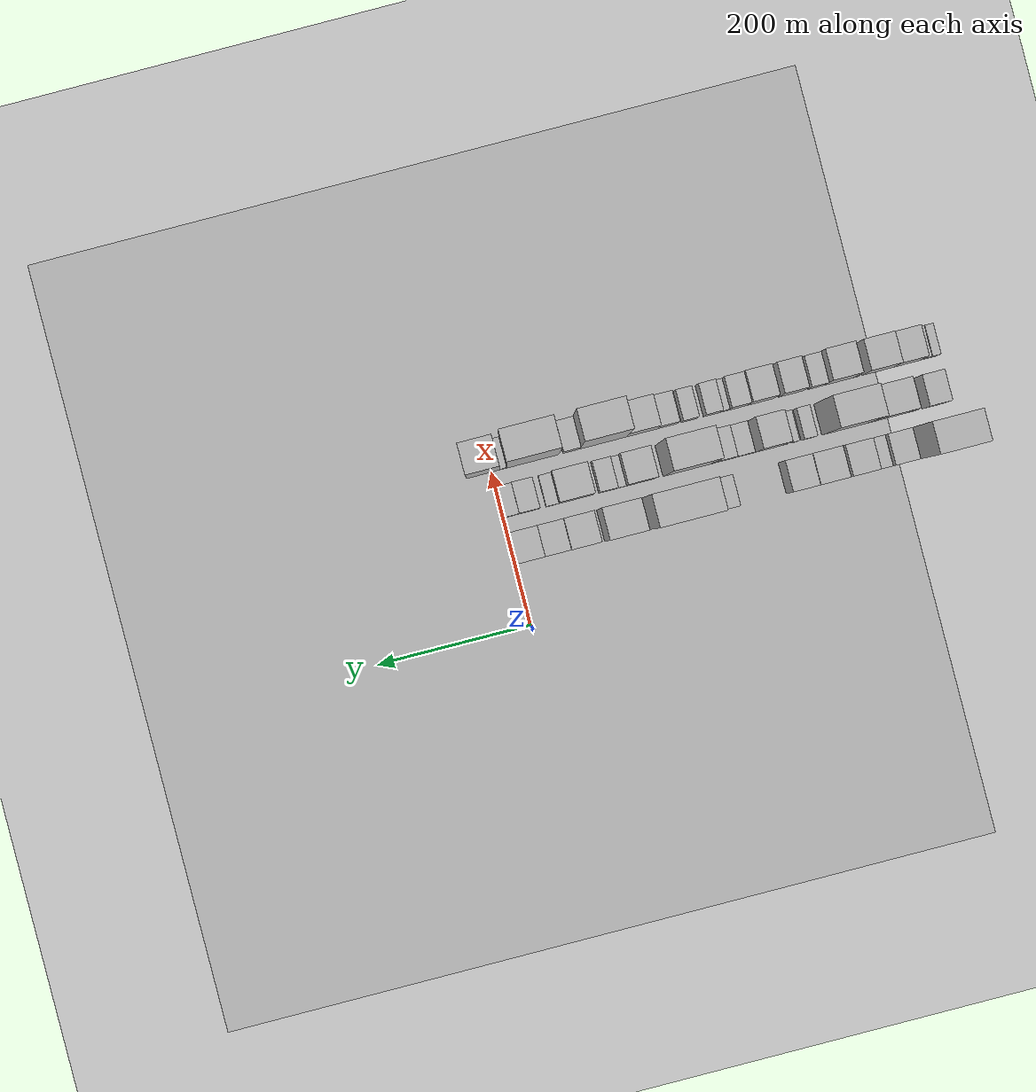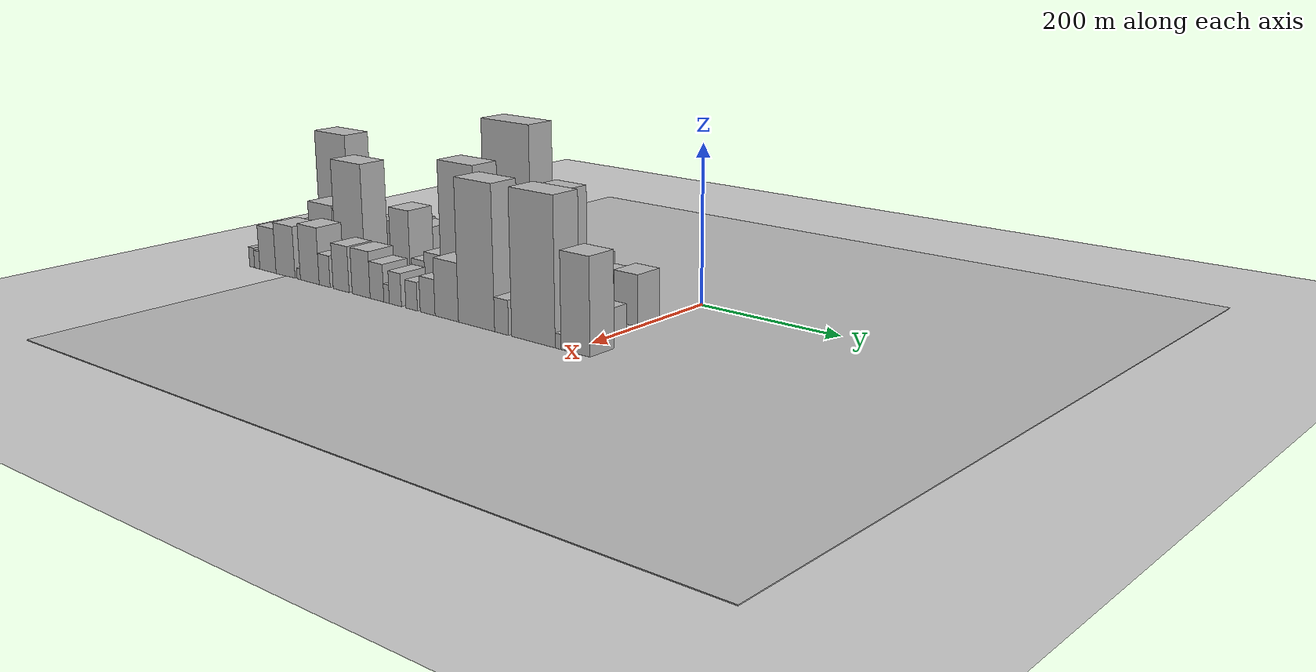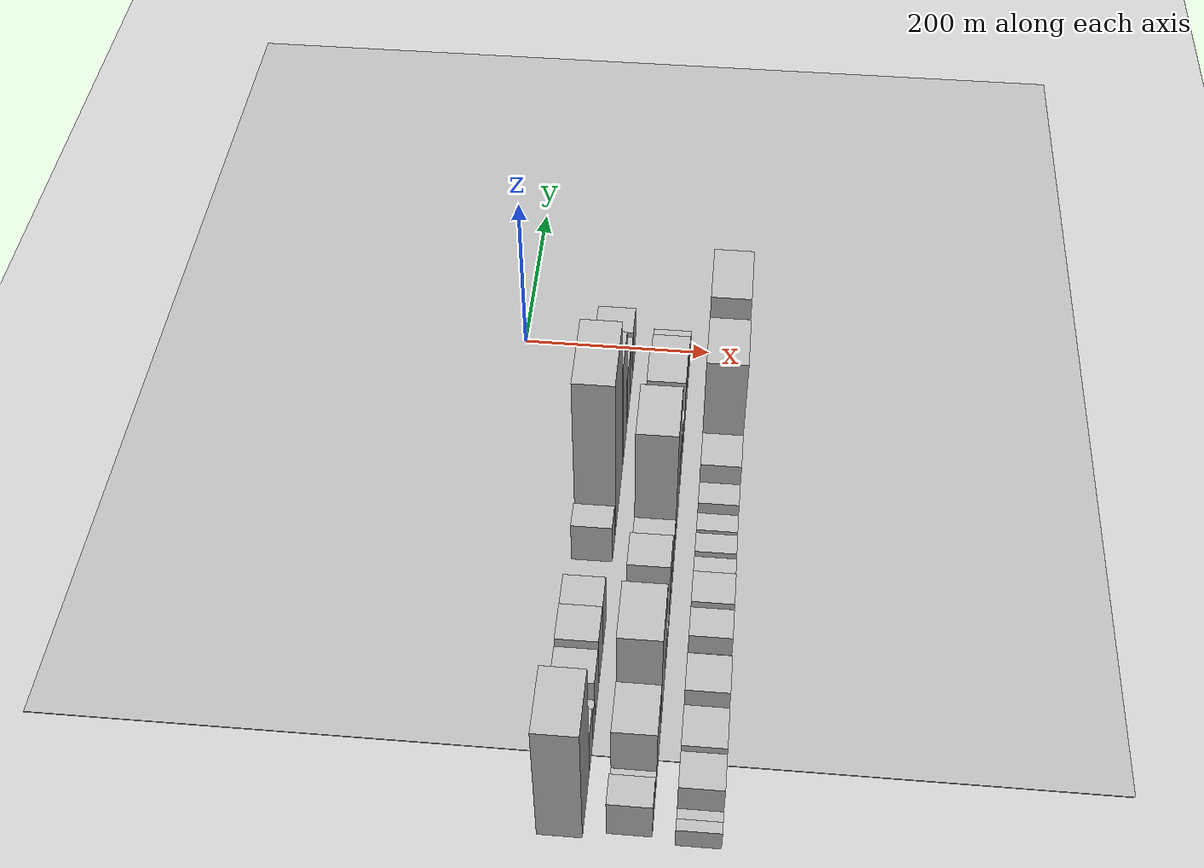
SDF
<sdf version="1.6">
 <world name="default">
  <include><name>ground_plane_1</name><uri>model://HANNAS_ground_plane</uri></include>
  <include>
   <name>ground_plane_2</name>
   <uri>model://HANNAS_ground_plane</uri>
   <pose>100 0 0  0 0 0</pose>
  </include>
  <model name="building_1">
   <static>1</static>
   <pose>100.0000 -548.3771 0 0.000000 0.000000 0.000000</pose>
   <link name="link">
    <pose>0 0 84.00 0 0 0</pose>
    <collision name="collision"><geometry><box><size>40.0000 63.2457 168.0000</size></box></geometry></collision>
    <visual name="visual">
     <cast_shadows>0</cast_shadows>
     <geometry><box><size>40.0000 63.2457 168.0000</size></box></geometry>
     <material>
      <script>
       <uri>model://HANNAS_wall/materials/scripts</uri>
       <uri>model://HANNAS_wall/materials/textures</uri>
       <name>vrc/HANNAS_wall</name>
      </script>
     </material>
    </visual>
   </link>
  </model>
  <model name="building_2">
   <static>1</static>
   <pose>100.0000 -500.9420 0 0.000000 0.000000 0.000000</pose>
   <link name="link">
    <pose>0 0 27.00 0 0 0</pose>
    <collision name="collision"><geometry><box><size>40.0000 31.6246 54.0000</size></box></geometry></collision>
    <visual name="visual">
     <cast_shadows>0</cast_shadows>
     <geometry><box><size>40.0000 31.6246 54.0000</size></box></geometry>
     <material>
      <script>
       <uri>model://HANNAS_wall/materials/scripts</uri>
       <uri>model://HANNAS_wall/materials/textures</uri>
       <name>vrc/HANNAS_wall</name>
      </script>
     </material>
    </visual>
   </link>
  </model>
  <model name="building_3">
   <static>1</static>
   <pose>100.0000 -475.0238 0 0.000000 0.000000 0.000000</pose>
   <link name="link">
    <pose>0 0 18.00 0 0 0</pose>
    <collision name="collision"><geometry><box><size>40.0000 20.2117 36.0000</size></box></geometry></collision>
    <visual name="visual">
     <cast_shadows>0</cast_shadows>
     <geometry><box><size>40.0000 20.2117 36.0000</size></box></geometry>
     <material>
      <script>
       <uri>model://HANNAS_wall/materials/scripts</uri>
       <uri>model://HANNAS_wall/materials/textures</uri>
       <name>vrc/HANNAS_wall</name>
      </script>
     </material>
    </visual>
   </link>
  </model>
  <model name="building_4">
   <static>1</static>
   <pose>100.0000 -447.1231 0 0.000000 0.000000 0.000000</pose>
   <link name="link">
    <pose>0 0 31.50 0 0 0</pose>
    <collision name="collision"><geometry><box><size>40.0000 35.5897 63.0000</size></box></geometry></collision>
    <visual name="visual">
     <cast_shadows>0</cast_shadows>
     <geometry><box><size>40.0000 35.5897 63.0000</size></box></geometry>
     <material>
      <script>
       <uri>model://HANNAS_wall/materials/scripts</uri>
       <uri>model://HANNAS_wall/materials/textures</uri>
       <name>vrc/HANNAS_wall</name>
      </script>
     </material>
    </visual>
   </link>
  </model>
  <model name="building_5">
   <static>1</static>
   <pose>100.0000 -406.2347 0 0.000000 0.000000 0.000000</pose>
   <link name="link">
    <pose>0 0 34.50 0 0 0</pose>
    <collision name="collision"><geometry><box><size>40.0000 38.1872 69.0000</size></box></geometry></collision>
    <visual name="visual">
     <cast_shadows>0</cast_shadows>
     <geometry><box><size>40.0000 38.1872 69.0000</size></box></geometry>
     <material>
      <script>
       <uri>model://HANNAS_wall/materials/scripts</uri>
       <uri>model://HANNAS_wall/materials/textures</uri>
       <name>vrc/HANNAS_wall</name>
      </script>
     </material>
    </visual>
   </link>
  </model>
  <model name="building_6">
   <static>1</static>
   <pose>100.0000 -369.8008 0 0.000000 0.000000 0.000000</pose>
   <link name="link">
    <pose>0 0 33.00 0 0 0</pose>
    <collision name="collision"><geometry><box><size>40.0000 34.6807 66.0000</size></box></geometry></collision>
    <visual name="visual">
     <cast_shadows>0</cast_shadows>
     <geometry><box><size>40.0000 34.6807 66.0000</size></box></geometry>
     <material>
      <script>
       <uri>model://HANNAS_wall/materials/scripts</uri>
       <uri>model://HANNAS_wall/materials/textures</uri>
       <name>vrc/HANNAS_wall</name>
      </script>
     </material>
    </visual>
   </link>
  </model>
  <model name="building_7">
   <static>1</static>
   <pose>100.0000 -273.6054 0 0.000000 0.000000 0.000000</pose>
   <link name="link">
    <pose>0 0 27.00 0 0 0</pose>
    <collision name="collision"><geometry><box><size>40.0000 27.2367 54.0000</size></box></geometry></collision>
    <visual name="visual">
     <cast_shadows>0</cast_shadows>
     <geometry><box><size>40.0000 27.2367 54.0000</size></box></geometry>
     <material>
      <script>
       <uri>model://HANNAS_wall/materials/scripts</uri>
       <uri>model://HANNAS_wall/materials/textures</uri>
       <name>vrc/HANNAS_wall</name>
      </script>
     </material>
    </visual>
   </link>
  </model>
  <model name="building_8">
   <static>1</static>
   <pose>100.0000 -256.3107 0 0.000000 0.000000 0.000000</pose>
   <link name="link">
    <pose>0 0 9.00 0 0 0</pose>
    <collision name="collision"><geometry><box><size>40.0000 7.3528 18.0000</size></box></geometry></collision>
    <visual name="visual">
     <cast_shadows>0</cast_shadows>
     <geometry><box><size>40.0000 7.3528 18.0000</size></box></geometry>
     <material>
      <script>
       <uri>model://HANNAS_wall/materials/scripts</uri>
       <uri>model://HANNAS_wall/materials/textures</uri>
       <name>vrc/HANNAS_wall</name>
      </script>
     </material>
    </visual>
   </link>
  </model>
  <model name="building_9">
   <static>1</static>
   <pose>100.0000 -212.1826 0 0.000000 0.000000 0.000000</pose>
   <link name="link">
    <pose>0 0 109.50 0 0 0</pose>
    <collision name="collision"><geometry><box><size>40.0000 80.9033 219.0000</size></box></geometry></collision>
    <visual name="visual">
     <cast_shadows>0</cast_shadows>
     <geometry><box><size>40.0000 80.9033 219.0000</size></box></geometry>
     <material>
      <script>
       <uri>model://HANNAS_wall/materials/scripts</uri>
       <uri>model://HANNAS_wall/materials/textures</uri>
       <name>vrc/HANNAS_wall</name>
      </script>
     </material>
    </visual>
   </link>
  </model>
  <model name="building_10">
   <static>1</static>
   <pose>100.0000 -140.3099 0 0.000000 0.000000 0.000000</pose>
   <link name="link">
    <pose>0 0 73.50 0 0 0</pose>
    <collision name="collision"><geometry><box><size>40.0000 48.8421 147.0000</size></box></geometry></collision>
    <visual name="visual">
     <cast_shadows>0</cast_shadows>
     <geometry><box><size>40.0000 48.8421 147.0000</size></box></geometry>
     <material>
      <script>
       <uri>model://HANNAS_wall/materials/scripts</uri>
       <uri>model://HANNAS_wall/materials/textures</uri>
       <name>vrc/HANNAS_wall</name>
      </script>
     </material>
    </visual>
   </link>
  </model>
  <model name="building_11">
   <static>1</static>
   <pose>100.0000 -90.5646 0 0.000000 0.000000 0.000000</pose>
   <link name="link">
    <pose>0 0 36.00 0 0 0</pose>
    <collision name="collision"><geometry><box><size>40.0000 38.6485 72.0000</size></box></geometry></collision>
    <visual name="visual">
     <cast_shadows>0</cast_shadows>
     <geometry><box><size>40.0000 38.6485 72.0000</size></box></geometry>
     <material>
      <script>
       <uri>model://HANNAS_wall/materials/scripts</uri>
       <uri>model://HANNAS_wall/materials/textures</uri>
       <name>vrc/HANNAS_wall</name>
      </script>
     </material>
    </visual>
   </link>
  </model>
  <model name="building_12">
   <static>1</static>
   <pose>100.0000 -54.4767 0 0.000000 0.000000 0.000000</pose>
   <link name="link">
    <pose>0 0 28.50 0 0 0</pose>
    <collision name="collision"><geometry><box><size>40.0000 33.5274 57.0000</size></box></geometry></collision>
    <visual name="visual">
     <cast_shadows>0</cast_shadows>
     <geometry><box><size>40.0000 33.5274 57.0000</size></box></geometry>
     <material>
      <script>
       <uri>model://HANNAS_wall/materials/scripts</uri>
       <uri>model://HANNAS_wall/materials/textures</uri>
       <name>vrc/HANNAS_wall</name>
      </script>
     </material>
    </visual>
   </link>
  </model>
  <model name="building_13">
   <static>1</static>
   <pose>100.0000 -19.4294 0 0.000000 0.000000 0.000000</pose>
   <link name="link">
    <pose>0 0 31.50 0 0 0</pose>
    <collision name="collision"><geometry><box><size>40.0000 36.5672 63.0000</size></box></geometry></collision>
    <visual name="visual">
     <cast_shadows>0</cast_shadows>
     <geometry><box><size>40.0000 36.5672 63.0000</size></box></geometry>
     <material>
      <script>
       <uri>model://HANNAS_wall/materials/scripts</uri>
       <uri>model://HANNAS_wall/materials/textures</uri>
       <name>vrc/HANNAS_wall</name>
      </script>
     </material>
    </visual>
   </link>
  </model>
  <model name="building_30">
   <static>1</static>
   <pose>160.0000 -559.5508 0 0.000000 0.000000 0.000000</pose>
   <link name="link">
    <pose>0 0 25.50 0 0 0</pose>
    <collision name="collision"><geometry><box><size>40.0000 28.8984 51.0000</size></box></geometry></collision>
    <visual name="visual">
     <cast_shadows>0</cast_shadows>
     <geometry><box><size>40.0000 28.8984 51.0000</size></box></geometry>
     <material>
      <script>
       <uri>model://HANNAS_wall/materials/scripts</uri>
       <uri>model://HANNAS_wall/materials/textures</uri>
       <name>vrc/HANNAS_wall</name>
      </script>
     </material>
    </visual>
   </link>
  </model>
  <model name="building_31">
   <static>1</static>
   <pose>160.0000 -531.5148 0 0.000000 0.000000 0.000000</pose>
   <link name="link">
    <pose>0 0 13.50 0 0 0</pose>
    <collision name="collision"><geometry><box><size>40.0000 11.1736 27.0000</size></box></geometry></collision>
    <visual name="visual">
     <cast_shadows>0</cast_shadows>
     <geometry><box><size>40.0000 11.1736 27.0000</size></box></geometry>
     <material>
      <script>
       <uri>model://HANNAS_wall/materials/scripts</uri>
       <uri>model://HANNAS_wall/materials/textures</uri>
       <name>vrc/HANNAS_wall</name>
      </script>
     </material>
    </visual>
   </link>
  </model>
  <model name="building_32">
   <static>1</static>
   <pose>160.0000 -500.9850 0 0.000000 0.000000 0.000000</pose>
   <link name="link">
    <pose>0 0 43.50 0 0 0</pose>
    <collision name="collision"><geometry><box><size>40.0000 49.8860 87.0000</size></box></geometry></collision>
    <visual name="visual">
     <cast_shadows>0</cast_shadows>
     <geometry><box><size>40.0000 49.8860 87.0000</size></box></geometry>
     <material>
      <script>
       <uri>model://HANNAS_wall/materials/scripts</uri>
       <uri>model://HANNAS_wall/materials/textures</uri>
       <name>vrc/HANNAS_wall</name>
      </script>
     </material>
    </visual>
   </link>
  </model>
  <model name="building_33">
   <static>1</static>
   <pose>160.0000 -443.7543 0 0.000000 0.000000 0.000000</pose>
   <link name="link">
    <pose>0 0 75.00 0 0 0</pose>
    <collision name="collision"><geometry><box><size>40.0000 58.5753 150.0000</size></box></geometry></collision>
    <visual name="visual">
     <cast_shadows>0</cast_shadows>
     <geometry><box><size>40.0000 58.5753 150.0000</size></box></geometry>
     <material>
      <script>
       <uri>model://HANNAS_wall/materials/scripts</uri>
       <uri>model://HANNAS_wall/materials/textures</uri>
       <name>vrc/HANNAS_wall</name>
      </script>
     </material>
    </visual>
   </link>
  </model>
  <model name="building_34">
   <static>1</static>
   <pose>160.0000 -395.9917 0 0.000000 0.000000 0.000000</pose>
   <link name="link">
    <pose>0 0 16.50 0 0 0</pose>
    <collision name="collision"><geometry><box><size>40.0000 16.9500 33.0000</size></box></geometry></collision>
    <visual name="visual">
     <cast_shadows>0</cast_shadows>
     <geometry><box><size>40.0000 16.9500 33.0000</size></box></geometry>
     <material>
      <script>
       <uri>model://HANNAS_wall/materials/scripts</uri>
       <uri>model://HANNAS_wall/materials/textures</uri>
       <name>vrc/HANNAS_wall</name>
      </script>
     </material>
    </visual>
   </link>
  </model>
  <model name="building_35">
   <static>1</static>
   <pose>160.0000 -379.2381 0 0.000000 0.000000 0.000000</pose>
   <link name="link">
    <pose>0 0 9.00 0 0 0</pose>
    <collision name="collision"><geometry><box><size>40.0000 8.5573 18.0000</size></box></geometry></collision>
    <visual name="visual">
     <cast_shadows>0</cast_shadows>
     <geometry><box><size>40.0000 8.5573 18.0000</size></box></geometry>
     <material>
      <script>
       <uri>model://HANNAS_wall/materials/scripts</uri>
       <uri>model://HANNAS_wall/materials/textures</uri>
       <name>vrc/HANNAS_wall</name>
      </script>
     </material>
    </visual>
   </link>
  </model>
  <model name="building_36">
   <static>1</static>
   <pose>160.0000 -366.2228 0 0.000000 0.000000 0.000000</pose>
   <link name="link">
    <pose>0 0 7.50 0 0 0</pose>
    <collision name="collision"><geometry><box><size>40.0000 7.4733 15.0000</size></box></geometry></collision>
    <visual name="visual">
     <cast_shadows>0</cast_shadows>
     <geometry><box><size>40.0000 7.4733 15.0000</size></box></geometry>
     <material>
      <script>
       <uri>model://HANNAS_wall/materials/scripts</uri>
       <uri>model://HANNAS_wall/materials/textures</uri>
       <name>vrc/HANNAS_wall</name>
      </script>
     </material>
    </visual>
   </link>
  </model>
  <model name="building_37">
   <static>1</static>
   <pose>160.0000 -344.3041 0 0.000000 0.000000 0.000000</pose>
   <link name="link">
    <pose>0 0 51.00 0 0 0</pose>
    <collision name="collision"><geometry><box><size>40.0000 36.3642 102.0000</size></box></geometry></collision>
    <visual name="visual">
     <cast_shadows>0</cast_shadows>
     <geometry><box><size>40.0000 36.3642 102.0000</size></box></geometry>
     <material>
      <script>
       <uri>model://HANNAS_wall/materials/scripts</uri>
       <uri>model://HANNAS_wall/materials/textures</uri>
       <name>vrc/HANNAS_wall</name>
      </script>
     </material>
    </visual>
   </link>
  </model>
  <model name="building_38">
   <static>1</static>
   <pose>160.0000 -311.3128 0 0.000000 0.000000 0.000000</pose>
   <link name="link">
    <pose>0 0 21.00 0 0 0</pose>
    <collision name="collision"><geometry><box><size>40.0000 23.6185 42.0000</size></box></geometry></collision>
    <visual name="visual">
     <cast_shadows>0</cast_shadows>
     <geometry><box><size>40.0000 23.6185 42.0000</size></box></geometry>
     <material>
      <script>
       <uri>model://HANNAS_wall/materials/scripts</uri>
       <uri>model://HANNAS_wall/materials/textures</uri>
       <name>vrc/HANNAS_wall</name>
      </script>
     </material>
    </visual>
   </link>
  </model>
  <model name="building_39">
   <static>1</static>
   <pose>160.0000 -285.6026 0 0.000000 0.000000 0.000000</pose>
   <link name="link">
    <pose>0 0 27.00 0 0 0</pose>
    <collision name="collision"><geometry><box><size>40.0000 27.8018 54.0000</size></box></geometry></collision>
    <visual name="visual">
     <cast_shadows>0</cast_shadows>
     <geometry><box><size>40.0000 27.8018 54.0000</size></box></geometry>
     <material>
      <script>
       <uri>model://HANNAS_wall/materials/scripts</uri>
       <uri>model://HANNAS_wall/materials/textures</uri>
       <name>vrc/HANNAS_wall</name>
      </script>
     </material>
    </visual>
   </link>
  </model>
  <model name="building_40">
   <static>1</static>
   <pose>160.0000 -238.1827 0 0.000000 0.000000 0.000000</pose>
   <link name="link">
    <pose>0 0 87.00 0 0 0</pose>
    <collision name="collision"><geometry><box><size>40.0000 61.0381 174.0000</size></box></geometry></collision>
    <visual name="visual">
     <cast_shadows>0</cast_shadows>
     <geometry><box><size>40.0000 61.0381 174.0000</size></box></geometry>
     <material>
      <script>
       <uri>model://HANNAS_wall/materials/scripts</uri>
       <uri>model://HANNAS_wall/materials/textures</uri>
       <name>vrc/HANNAS_wall</name>
      </script>
     </material>
    </visual>
   </link>
  </model>
  <model name="building_41">
   <static>1</static>
   <pose>160.0000 -178.2410 0 0.000000 0.000000 0.000000</pose>
   <link name="link">
    <pose>0 0 33.00 0 0 0</pose>
    <collision name="collision"><geometry><box><size>40.0000 38.8452 66.0000</size></box></geometry></collision>
    <visual name="visual">
     <cast_shadows>0</cast_shadows>
     <geometry><box><size>40.0000 38.8452 66.0000</size></box></geometry>
     <material>
      <script>
       <uri>model://HANNAS_wall/materials/scripts</uri>
       <uri>model://HANNAS_wall/materials/textures</uri>
       <name>vrc/HANNAS_wall</name>
      </script>
     </material>
    </visual>
   </link>
  </model>
  <model name="building_42">
   <static>1</static>
   <pose>160.0000 -153.0910 0 0.000000 0.000000 0.000000</pose>
   <link name="link">
    <pose>0 0 12.00 0 0 0</pose>
    <collision name="collision"><geometry><box><size>40.0000 11.4548 24.0000</size></box></geometry></collision>
    <visual name="visual">
     <cast_shadows>0</cast_shadows>
     <geometry><box><size>40.0000 11.4548 24.0000</size></box></geometry>
     <material>
      <script>
       <uri>model://HANNAS_wall/materials/scripts</uri>
       <uri>model://HANNAS_wall/materials/textures</uri>
       <name>vrc/HANNAS_wall</name>
      </script>
     </material>
    </visual>
   </link>
  </model>
  <model name="building_43">
   <static>1</static>
   <pose>160.0000 -135.5681 0 0.000000 0.000000 0.000000</pose>
   <link name="link">
    <pose>0 0 22.50 0 0 0</pose>
    <collision name="collision"><geometry><box><size>40.0000 23.5911 45.0000</size></box></geometry></collision>
    <visual name="visual">
     <cast_shadows>0</cast_shadows>
     <geometry><box><size>40.0000 23.5911 45.0000</size></box></geometry>
     <material>
      <script>
       <uri>model://HANNAS_wall/materials/scripts</uri>
       <uri>model://HANNAS_wall/materials/textures</uri>
       <name>vrc/HANNAS_wall</name>
      </script>
     </material>
    </visual>
   </link>
  </model>
  <model name="building_44">
   <static>1</static>
   <pose>160.0000 -94.1134 0 0.000000 0.000000 0.000000</pose>
   <link name="link">
    <pose>0 0 39.00 0 0 0</pose>
    <collision name="collision"><geometry><box><size>40.0000 45.3183 78.0000</size></box></geometry></collision>
    <visual name="visual">
     <cast_shadows>0</cast_shadows>
     <geometry><box><size>40.0000 45.3183 78.0000</size></box></geometry>
     <material>
      <script>
       <uri>model://HANNAS_wall/materials/scripts</uri>
       <uri>model://HANNAS_wall/materials/textures</uri>
       <name>vrc/HANNAS_wall</name>
      </script>
     </material>
    </visual>
   </link>
  </model>
  <model name="building_45">
   <static>1</static>
   <pose>160.0000 -63.2734 0 0.000000 0.000000 0.000000</pose>
   <link name="link">
    <pose>0 0 15.00 0 0 0</pose>
    <collision name="collision"><geometry><box><size>40.0000 16.3616 30.0000</size></box></geometry></collision>
    <visual name="visual">
     <cast_shadows>0</cast_shadows>
     <geometry><box><size>40.0000 16.3616 30.0000</size></box></geometry>
     <material>
      <script>
       <uri>model://HANNAS_wall/materials/scripts</uri>
       <uri>model://HANNAS_wall/materials/textures</uri>
       <name>vrc/HANNAS_wall</name>
      </script>
     </material>
    </visual>
   </link>
  </model>
  <model name="building_46">
   <static>1</static>
   <pose>160.0000 -33.7286 0 0.000000 0.000000 0.000000</pose>
   <link name="link">
    <pose>0 0 22.50 0 0 0</pose>
    <collision name="collision"><geometry><box><size>40.0000 26.7280 45.0000</size></box></geometry></collision>
    <visual name="visual">
     <cast_shadows>0</cast_shadows>
     <geometry><box><size>40.0000 26.7280 45.0000</size></box></geometry>
     <material>
      <script>
       <uri>model://HANNAS_wall/materials/scripts</uri>
       <uri>model://HANNAS_wall/materials/textures</uri>
       <name>vrc/HANNAS_wall</name>
      </script>
     </material>
    </visual>
   </link>
  </model>
  <model name="building_47">
   <static>1</static>
   <pose>160.0000 -10.7239 0 0.000000 0.000000 0.000000</pose>
   <link name="link">
    <pose>0 0 16.50 0 0 0</pose>
    <collision name="collision"><geometry><box><size>40.0000 19.2815 33.0000</size></box></geometry></collision>
    <visual name="visual">
     <cast_shadows>0</cast_shadows>
     <geometry><box><size>40.0000 19.2815 33.0000</size></box></geometry>
     <material>
      <script>
       <uri>model://HANNAS_wall/materials/scripts</uri>
       <uri>model://HANNAS_wall/materials/textures</uri>
       <name>vrc/HANNAS_wall</name>
      </script>
     </material>
    </visual>
   </link>
  </model>
  <model name="building_67">
   <static>1</static>
   <pose>220.0000 -574.5463 0 0.000000 0.000000 0.000000</pose>
   <link name="link">
    <pose>0 0 13.50 0 0 0</pose>
    <collision name="collision"><geometry><box><size>40.0000 10.9074 27.0000</size></box></geometry></collision>
    <visual name="visual">
     <cast_shadows>0</cast_shadows>
     <geometry><box><size>40.0000 10.9074 27.0000</size></box></geometry>
     <material>
      <script>
       <uri>model://HANNAS_wall/materials/scripts</uri>
       <uri>model://HANNAS_wall/materials/textures</uri>
       <name>vrc/HANNAS_wall</name>
      </script>
     </material>
    </visual>
   </link>
  </model>
  <model name="building_68">
   <static>1</static>
   <pose>220.0000 -563.4417 0 0.000000 0.000000 0.000000</pose>
   <link name="link">
    <pose>0 0 12.00 0 0 0</pose>
    <collision name="collision"><geometry><box><size>40.0000 11.3018 24.0000</size></box></geometry></collision>
    <visual name="visual">
     <cast_shadows>0</cast_shadows>
     <geometry><box><size>40.0000 11.3018 24.0000</size></box></geometry>
     <material>
      <script>
       <uri>model://HANNAS_wall/materials/scripts</uri>
       <uri>model://HANNAS_wall/materials/textures</uri>
       <name>vrc/HANNAS_wall</name>
      </script>
     </material>
    </visual>
   </link>
  </model>
  <model name="building_69">
   <static>1</static>
   <pose>220.0000 -540.3054 0 0.000000 0.000000 0.000000</pose>
   <link name="link">
    <pose>0 0 30.00 0 0 0</pose>
    <collision name="collision"><geometry><box><size>40.0000 34.9706 60.0000</size></box></geometry></collision>
    <visual name="visual">
     <cast_shadows>0</cast_shadows>
     <geometry><box><size>40.0000 34.9706 60.0000</size></box></geometry>
     <material>
      <script>
       <uri>model://HANNAS_wall/materials/scripts</uri>
       <uri>model://HANNAS_wall/materials/textures</uri>
       <name>vrc/HANNAS_wall</name>
      </script>
     </material>
    </visual>
   </link>
  </model>
  <model name="building_70">
   <static>1</static>
   <pose>220.0000 -502.7927 0 0.000000 0.000000 0.000000</pose>
   <link name="link">
    <pose>0 0 34.50 0 0 0</pose>
    <collision name="collision"><geometry><box><size>40.0000 40.0548 69.0000</size></box></geometry></collision>
    <visual name="visual">
     <cast_shadows>0</cast_shadows>
     <geometry><box><size>40.0000 40.0548 69.0000</size></box></geometry>
     <material>
      <script>
       <uri>model://HANNAS_wall/materials/scripts</uri>
       <uri>model://HANNAS_wall/materials/textures</uri>
       <name>vrc/HANNAS_wall</name>
      </script>
     </material>
    </visual>
   </link>
  </model>
  <model name="building_71">
   <static>1</static>
   <pose>220.0000 -475.2770 0 0.000000 0.000000 0.000000</pose>
   <link name="link">
    <pose>0 0 7.50 0 0 0</pose>
    <collision name="collision"><geometry><box><size>40.0000 6.9767 15.0000</size></box></geometry></collision>
    <visual name="visual">
     <cast_shadows>0</cast_shadows>
     <geometry><box><size>40.0000 6.9767 15.0000</size></box></geometry>
     <material>
      <script>
       <uri>model://HANNAS_wall/materials/scripts</uri>
       <uri>model://HANNAS_wall/materials/textures</uri>
       <name>vrc/HANNAS_wall</name>
      </script>
     </material>
    </visual>
   </link>
  </model>
  <model name="building_72">
   <static>1</static>
   <pose>220.0000 -452.5872 0 0.000000 0.000000 0.000000</pose>
   <link name="link">
    <pose>0 0 37.50 0 0 0</pose>
    <collision name="collision"><geometry><box><size>40.0000 38.4029 75.0000</size></box></geometry></collision>
    <visual name="visual">
     <cast_shadows>0</cast_shadows>
     <geometry><box><size>40.0000 38.4029 75.0000</size></box></geometry>
     <material>
      <script>
       <uri>model://HANNAS_wall/materials/scripts</uri>
       <uri>model://HANNAS_wall/materials/textures</uri>
       <name>vrc/HANNAS_wall</name>
      </script>
     </material>
    </visual>
   </link>
  </model>
  <model name="building_73">
   <static>1</static>
   <pose>220.0000 -422.4403 0 0.000000 0.000000 0.000000</pose>
   <link name="link">
    <pose>0 0 21.00 0 0 0</pose>
    <collision name="collision"><geometry><box><size>40.0000 21.8910 42.0000</size></box></geometry></collision>
    <visual name="visual">
     <cast_shadows>0</cast_shadows>
     <geometry><box><size>40.0000 21.8910 42.0000</size></box></geometry>
     <material>
      <script>
       <uri>model://HANNAS_wall/materials/scripts</uri>
       <uri>model://HANNAS_wall/materials/textures</uri>
       <name>vrc/HANNAS_wall</name>
      </script>
     </material>
    </visual>
   </link>
  </model>
  <model name="building_74">
   <static>1</static>
   <pose>220.0000 -389.8541 0 0.000000 0.000000 0.000000</pose>
   <link name="link">
    <pose>0 0 30.00 0 0 0</pose>
    <collision name="collision"><geometry><box><size>40.0000 31.2814 60.0000</size></box></geometry></collision>
    <visual name="visual">
     <cast_shadows>0</cast_shadows>
     <geometry><box><size>40.0000 31.2814 60.0000</size></box></geometry>
     <material>
      <script>
       <uri>model://HANNAS_wall/materials/scripts</uri>
       <uri>model://HANNAS_wall/materials/textures</uri>
       <name>vrc/HANNAS_wall</name>
      </script>
     </material>
    </visual>
   </link>
  </model>
  <model name="building_75">
   <static>1</static>
   <pose>220.0000 -351.0463 0 0.000000 0.000000 0.000000</pose>
   <link name="link">
    <pose>0 0 30.00 0 0 0</pose>
    <collision name="collision"><geometry><box><size>40.0000 34.3341 60.0000</size></box></geometry></collision>
    <visual name="visual">
     <cast_shadows>0</cast_shadows>
     <geometry><box><size>40.0000 34.3341 60.0000</size></box></geometry>
     <material>
      <script>
       <uri>model://HANNAS_wall/materials/scripts</uri>
       <uri>model://HANNAS_wall/materials/textures</uri>
       <name>vrc/HANNAS_wall</name>
      </script>
     </material>
    </visual>
   </link>
  </model>
  <model name="building_76">
   <static>1</static>
   <pose>220.0000 -321.0374 0 0.000000 0.000000 0.000000</pose>
   <link name="link">
    <pose>0 0 24.00 0 0 0</pose>
    <collision name="collision"><geometry><box><size>40.0000 25.6836 48.0000</size></box></geometry></collision>
    <visual name="visual">
     <cast_shadows>0</cast_shadows>
     <geometry><box><size>40.0000 25.6836 48.0000</size></box></geometry>
     <material>
      <script>
       <uri>model://HANNAS_wall/materials/scripts</uri>
       <uri>model://HANNAS_wall/materials/textures</uri>
       <name>vrc/HANNAS_wall</name>
      </script>
     </material>
    </visual>
   </link>
  </model>
  <model name="building_77">
   <static>1</static>
   <pose>220.0000 -303.1482 0 0.000000 0.000000 0.000000</pose>
   <link name="link">
    <pose>0 0 12.00 0 0 0</pose>
    <collision name="collision"><geometry><box><size>40.0000 10.0949 24.0000</size></box></geometry></collision>
    <visual name="visual">
     <cast_shadows>0</cast_shadows>
     <geometry><box><size>40.0000 10.0949 24.0000</size></box></geometry>
     <material>
      <script>
       <uri>model://HANNAS_wall/materials/scripts</uri>
       <uri>model://HANNAS_wall/materials/textures</uri>
       <name>vrc/HANNAS_wall</name>
      </script>
     </material>
    </visual>
   </link>
  </model>
  <model name="building_78">
   <static>1</static>
   <pose>220.0000 -286.9651 0 0.000000 0.000000 0.000000</pose>
   <link name="link">
    <pose>0 0 21.00 0 0 0</pose>
    <collision name="collision"><geometry><box><size>40.0000 22.2712 42.0000</size></box></geometry></collision>
    <visual name="visual">
     <cast_shadows>0</cast_shadows>
     <geometry><box><size>40.0000 22.2712 42.0000</size></box></geometry>
     <material>
      <script>
       <uri>model://HANNAS_wall/materials/scripts</uri>
       <uri>model://HANNAS_wall/materials/textures</uri>
       <name>vrc/HANNAS_wall</name>
      </script>
     </material>
    </visual>
   </link>
  </model>
  <model name="building_79">
   <static>1</static>
   <pose>220.0000 -257.4649 0 0.000000 0.000000 0.000000</pose>
   <link name="link">
    <pose>0 0 18.00 0 0 0</pose>
    <collision name="collision"><geometry><box><size>40.0000 20.7292 36.0000</size></box></geometry></collision>
    <visual name="visual">
     <cast_shadows>0</cast_shadows>
     <geometry><box><size>40.0000 20.7292 36.0000</size></box></geometry>
     <material>
      <script>
       <uri>model://HANNAS_wall/materials/scripts</uri>
       <uri>model://HANNAS_wall/materials/textures</uri>
       <name>vrc/HANNAS_wall</name>
      </script>
     </material>
    </visual>
   </link>
  </model>
  <model name="building_80">
   <static>1</static>
   <pose>220.0000 -229.0324 0 0.000000 0.000000 0.000000</pose>
   <link name="link">
    <pose>0 0 22.50 0 0 0</pose>
    <collision name="collision"><geometry><box><size>40.0000 26.1358 45.0000</size></box></geometry></collision>
    <visual name="visual">
     <cast_shadows>0</cast_shadows>
     <geometry><box><size>40.0000 26.1358 45.0000</size></box></geometry>
     <material>
      <script>
       <uri>model://HANNAS_wall/materials/scripts</uri>
       <uri>model://HANNAS_wall/materials/textures</uri>
       <name>vrc/HANNAS_wall</name>
      </script>
     </material>
    </visual>
   </link>
  </model>
  <model name="building_81">
   <static>1</static>
   <pose>220.0000 -195.7256 0 0.000000 0.000000 0.000000</pose>
   <link name="link">
    <pose>0 0 36.00 0 0 0</pose>
    <collision name="collision"><geometry><box><size>40.0000 40.4778 72.0000</size></box></geometry></collision>
    <visual name="visual">
     <cast_shadows>0</cast_shadows>
     <geometry><box><size>40.0000 40.4778 72.0000</size></box></geometry>
     <material>
      <script>
       <uri>model://HANNAS_wall/materials/scripts</uri>
       <uri>model://HANNAS_wall/materials/textures</uri>
       <name>vrc/HANNAS_wall</name>
      </script>
     </material>
    </visual>
   </link>
  </model>
  <model name="building_82">
   <static>1</static>
   <pose>220.0000 -145.4148 0 0.000000 0.000000 0.000000</pose>
   <link name="link">
    <pose>0 0 87.00 0 0 0</pose>
    <collision name="collision"><geometry><box><size>40.0000 60.1439 174.0000</size></box></geometry></collision>
    <visual name="visual">
     <cast_shadows>0</cast_shadows>
     <geometry><box><size>40.0000 60.1439 174.0000</size></box></geometry>
     <material>
      <script>
       <uri>model://HANNAS_wall/materials/scripts</uri>
       <uri>model://HANNAS_wall/materials/textures</uri>
       <name>vrc/HANNAS_wall</name>
      </script>
     </material>
    </visual>
   </link>
  </model>
  <model name="building_83">
   <static>1</static>
   <pose>220.0000 -104.0771 0 0.000000 0.000000 0.000000</pose>
   <link name="link">
    <pose>0 0 21.00 0 0 0</pose>
    <collision name="collision"><geometry><box><size>40.0000 22.5314 42.0000</size></box></geometry></collision>
    <visual name="visual">
     <cast_shadows>0</cast_shadows>
     <geometry><box><size>40.0000 22.5314 42.0000</size></box></geometry>
     <material>
      <script>
       <uri>model://HANNAS_wall/materials/scripts</uri>
       <uri>model://HANNAS_wall/materials/textures</uri>
       <name>vrc/HANNAS_wall</name>
      </script>
     </material>
    </visual>
   </link>
  </model>
  <model name="building_84">
   <static>1</static>
   <pose>220.0000 -53.8568 0 0.000000 0.000000 0.000000</pose>
   <link name="link">
    <pose>0 0 87.00 0 0 0</pose>
    <collision name="collision"><geometry><box><size>40.0000 67.9092 174.0000</size></box></geometry></collision>
    <visual name="visual">
     <cast_shadows>0</cast_shadows>
     <geometry><box><size>40.0000 67.9092 174.0000</size></box></geometry>
     <material>
      <script>
       <uri>model://HANNAS_wall/materials/scripts</uri>
       <uri>model://HANNAS_wall/materials/textures</uri>
       <name>vrc/HANNAS_wall</name>
      </script>
     </material>
    </visual>
   </link>
  </model>
  <model name="building_85">
   <static>1</static>
   <pose>220.0000 -15.4549 0 0.000000 0.000000 0.000000</pose>
   <link name="link">
    <pose>0 0 9.00 0 0 0</pose>
    <collision name="collision"><geometry><box><size>40.0000 8.8946 18.0000</size></box></geometry></collision>
    <visual name="visual">
     <cast_shadows>0</cast_shadows>
     <geometry><box><size>40.0000 8.8946 18.0000</size></box></geometry>
     <material>
      <script>
       <uri>model://HANNAS_wall/materials/scripts</uri>
       <uri>model://HANNAS_wall/materials/textures</uri>
       <name>vrc/HANNAS_wall</name>
      </script>
     </material>
    </visual>
   </link>
  </model>
  <model name="building_86">
   <static>1</static>
   <pose>220.0000 10.5084 0 0.000000 0.000000 0.000000</pose>
   <link name="link">
    <pose>0 0 57.00 0 0 0</pose>
    <collision name="collision"><geometry><box><size>40.0000 43.0320 114.0000</size></box></geometry></collision>
    <visual name="visual">
     <cast_shadows>0</cast_shadows>
     <geometry><box><size>40.0000 43.0320 114.0000</size></box></geometry>
     <material>
      <script>
       <uri>model://HANNAS_wall/materials/scripts</uri>
       <uri>model://HANNAS_wall/materials/textures</uri>
       <name>vrc/HANNAS_wall</name>
      </script>
     </material>
    </visual>
   </link>
  </model>
 </world>
</sdf>
